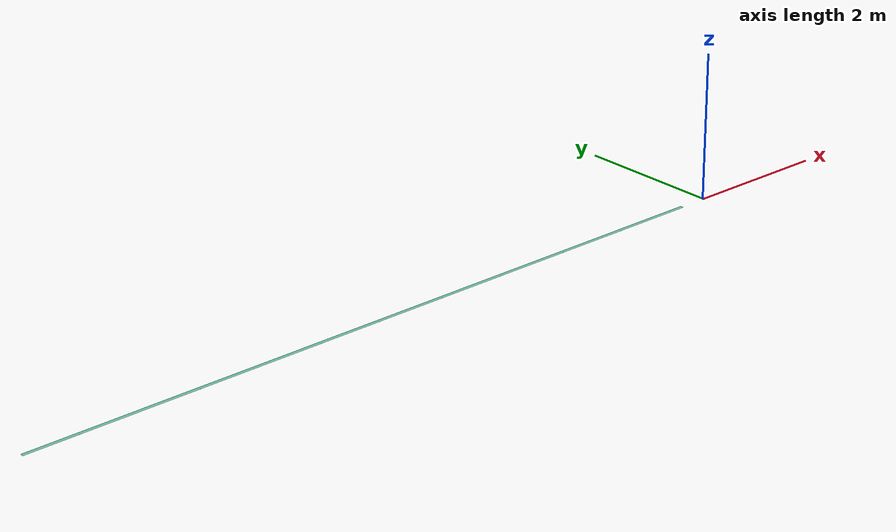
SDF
<?xml version='1.0'?>
<sdf version='1.7'>
  <model name='line_1'>
    <pose>-5.19499 0.005111 0 0 -0 0</pose>
    <link name='Wall_0'>
      <collision name='Wall_0_Collision'>
        <geometry>
          <box>
            <size>10 0.05 0.00005</size>
          </box>
        </geometry>
        <pose>0 0 0.0025 0 -0 0</pose>
      </collision>
      <visual name='Wall_0_Visual'>
        <pose>0 0 0.0025 0 -0 0</pose>
        <geometry>
          <box>
            <size>10 0.05 0.00005</size>
          </box>
        </geometry>
        <material>
          <script>
            <uri>file://media/materials/scripts/gazebo.material</uri>
            <name>Gazebo/Grey</name>
          </script>
          <ambient>0.435294 0.796078 0.67451 1</ambient>
        </material>
        <meta>
          <layer>0</layer>
        </meta>
      </visual>
      <pose>-0.194987 -0 0 0 -0 3.14159</pose>
    </link>
    <static>1</static>
  </model>
</sdf>
